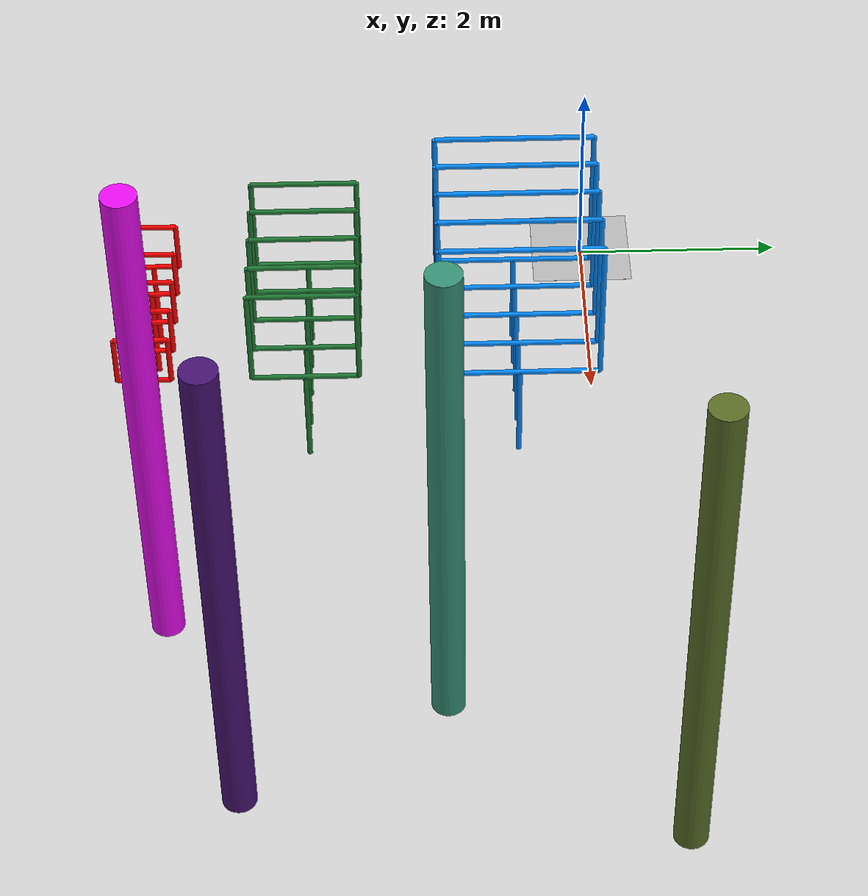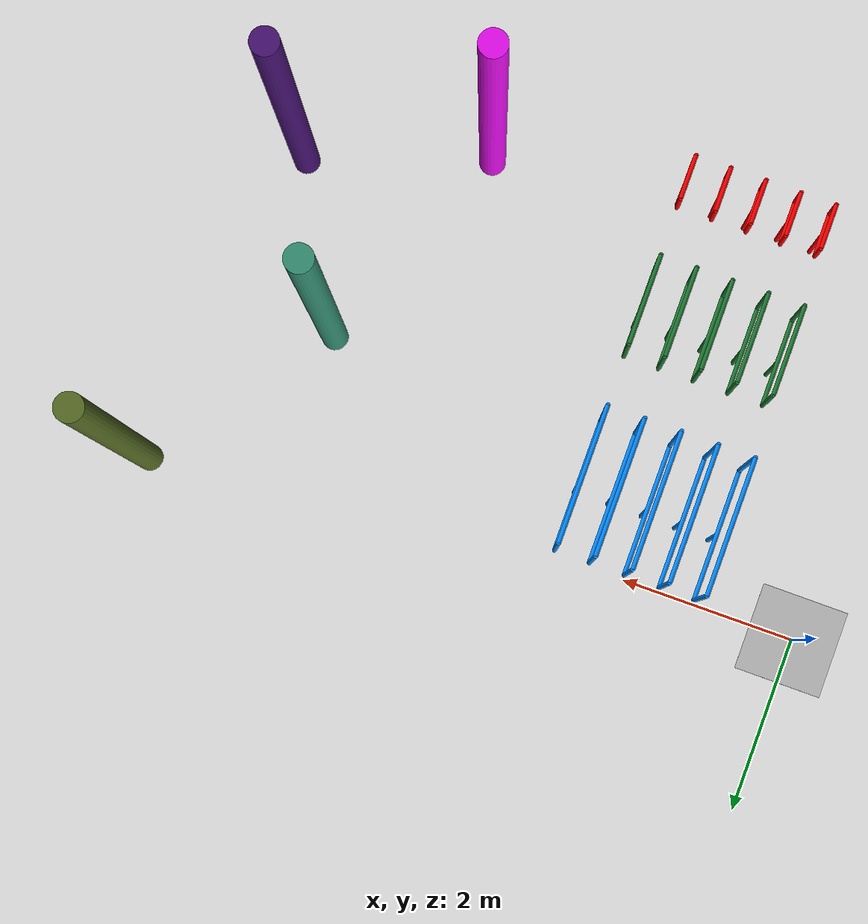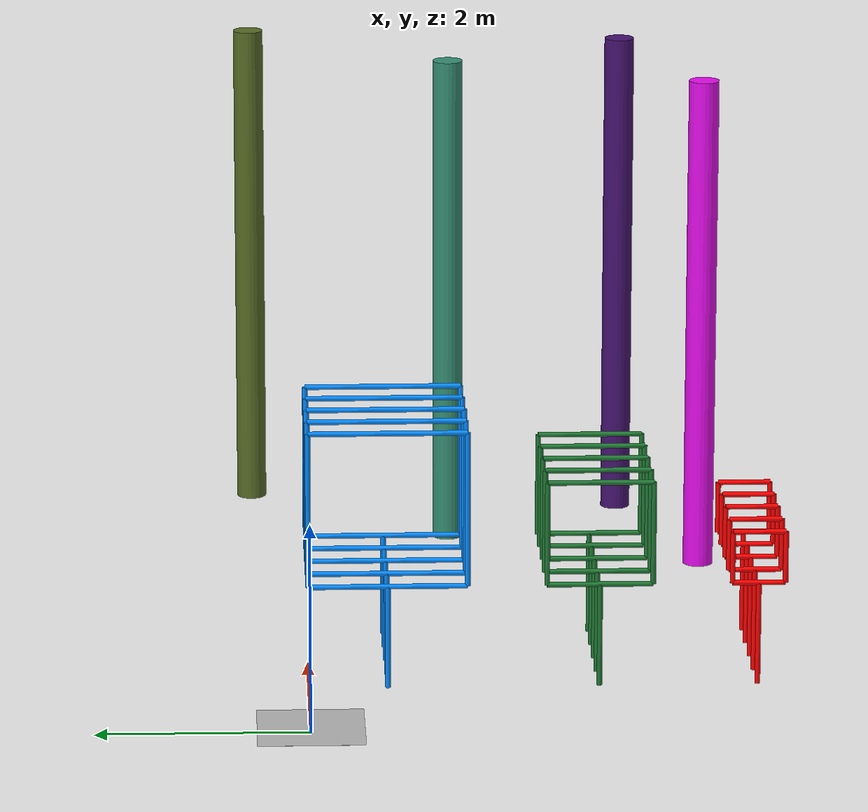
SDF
<sdf version="1.9">
 <world name="indoor">
  <physics type="ode">
   <max_step_size>0.004</max_step_size>
   <real_time_factor>1.0</real_time_factor>
   <real_time_update_rate>250</real_time_update_rate>
  </physics>
  <plugin name="gz::sim::systems::Physics" filename="gz-sim-physics-system"/>
  <plugin name="gz::sim::systems::UserCommands" filename="gz-sim-user-commands-system"/>
  <plugin name="gz::sim::systems::SceneBroadcaster" filename="gz-sim-scene-broadcaster-system"/>
  <plugin name="gz::sim::systems::Contact" filename="gz-sim-contact-system"/>
  <plugin name="gz::sim::systems::Imu" filename="gz-sim-imu-system"/>
  <plugin name="gz::sim::systems::AirPressure" filename="gz-sim-air-pressure-system"/>
  <plugin name="gz::sim::systems::Sensors" filename="gz-sim-sensors-system">
   <render_engine>ogre2</render_engine>
  </plugin>
  <gravity>0 0 -9.8</gravity>
  <magnetic_field>6e-06 2.3e-05 -4.2e-05</magnetic_field>
  <atmosphere type="adiabatic"/>
  <scene>
   <grid>false</grid>
   <ambient>0.4 0.4 0.4 1</ambient>
   <background>0.7 0.7 0.7 1</background>
   <shadows>true</shadows>
  </scene>
  <light name="sunUTC" type="directional">
   <pose>0 0 500 0 0 0</pose>
   <intensity>1</intensity>
   <direction>0 0 -1</direction>
   <diffuse>0.904 0.904 0.904 1</diffuse>
   <specular>0.271 0.271 0.271 1</specular>
   <attenuation><range>2000</range><linear>0</linear><constant>1</constant><quadratic>0</quadratic></attenuation>
  </light>
  <light name="directional_light1" type="directional">
   <pose>500 0 500 0 0 0</pose>
   <direction>-1 0 -1</direction>
   <intensity>0.5</intensity>
   <diffuse>0.8 0.8 0.8 1</diffuse>
   <specular>0.5 0.5 0.5 1</specular>
  </light>
  <light name="directional_light2" type="directional">
   <pose>0 500 500 0 0 0</pose>
   <direction>0 -1 -1</direction>
   <intensity>0.5</intensity>
   <diffuse>0.8 0.8 0.8 1</diffuse>
   <specular>0.5 0.5 0.5 1</specular>
  </light>
  <light name="directional_light3" type="directional">
   <pose>-500 0 500 0 0 0</pose>
   <direction>-1 0 -1</direction>
   <intensity>0.5</intensity>
   <diffuse>0.8 0.8 0.8 1</diffuse>
   <specular>0.5 0.5 0.5 1</specular>
  </light>
  <light name="directional_light4" type="directional">
   <pose>0 -500 500 0 0 0</pose>
   <direction>0 -1 -1</direction>
   <intensity>0.5</intensity>
   <diffuse>0.8 0.8 0.8 1</diffuse>
   <specular>0.5 0.5 0.5 1</specular>
  </light>
  <light name="directional_light5" type="directional">
   <pose>500 0 500 0 0 0</pose>
   <direction>1 0 1</direction>
   <intensity>0.5</intensity>
   <diffuse>0.8 0.8 0.8 1</diffuse>
   <specular>0.5 0.5 0.5 1</specular>
  </light>
  <light name="directional_light6" type="directional">
   <pose>0 500 500 0 0 0</pose>
   <direction>0 1 1</direction>
   <intensity>0.5</intensity>
   <diffuse>0.8 0.8 0.8 1</diffuse>
   <specular>0.5 0.5 0.5 1</specular>
  </light>
  <light name="directional_light7" type="directional">
   <pose>-500 0 500 0 0 0</pose>
   <direction>1 0 1</direction>
   <intensity>0.5</intensity>
   <diffuse>0.8 0.8 0.8 1</diffuse>
   <specular>0.5 0.5 0.5 1</specular>
  </light>
  <light name="directional_light8" type="directional">
   <pose>0 -500 500 0 0 0</pose>
   <direction>0 1 1</direction>
   <intensity>0.5</intensity>
   <diffuse>0.8 0.8 0.8 1</diffuse>
   <specular>0.5 0.5 0.5 1</specular>
  </light>
  <model name="obstacle_1">
   <static>true</static>
   <pose>7.5 0.5 2.5 0 0 0</pose>
   <link name="obstacle_link">
    <visual name="obstacle_visual">
     <geometry><cylinder><radius>0.15</radius><length>5</length></cylinder></geometry>
     <material><diffuse>0.35 0.43 0.15 1</diffuse></material>
    </visual>
   </link>
  </model>
  <model name="obstacle_2">
   <static>true</static>
   <pose>6 -1.5 2.5 0 0 0</pose>
   <link name="obstacle_link">
    <visual name="obstacle_visual">
     <geometry><cylinder><radius>0.15</radius><length>5</length></cylinder></geometry>
     <material><diffuse>0.21 0.57 0.46 1</diffuse></material>
    </visual>
   </link>
  </model>
  <model name="obstacle_3">
   <static>true</static>
   <pose>7 -3.3 2.5 0 0 0</pose>
   <link name="obstacle_link">
    <visual name="obstacle_visual">
     <geometry><cylinder><radius>0.15</radius><length>5</length></cylinder></geometry>
     <material><diffuse>0.28 0.07 0.45 1</diffuse></material>
    </visual>
   </link>
  </model>
  <model name="obstacle_4">
   <static>true</static>
   <pose>5 -4 2.5 0 0 0</pose>
   <link name="obstacle_link">
    <visual name="obstacle_visual">
     <geometry><cylinder><radius>0.15</radius><length>5</length></cylinder></geometry>
     <material><diffuse>0.92 0.05 0.95 1</diffuse></material>
    </visual>
   </link>
  </model>
  <model name="TakeOff Platform">
   <static>true</static>
   <pose>0 0 0.05 1.57079 0 1.57079</pose>
   <link name="base_TO_platform">
    <visual name="visual">
     <geometry><plane><normal>0 1 0</normal><size>1 1</size></plane></geometry>
     <material>
      <pbr><metal><emissive_map>model://images/Landing_Platform.png</emissive_map></metal></pbr>
     </material>
    </visual>
   </link>
  </model>
  <model name="tunel1_ventana1">
   <static>true</static>
   <link name="base">
    <pose>1.25 -0.75 0.5 0 0 0</pose>
    <visual name="vertical_support">
     <geometry><cylinder><radius>0.025</radius><length>1.0</length></cylinder></geometry>
     <material><diffuse>0.02 0.55 1 1</diffuse></material>
    </visual>
   </link>
   <link name="leftbar">
    <pose relative_to="base">0 0.75 1.25 0 0 0</pose>
    <visual name="left_bar">
     <geometry><cylinder><radius>0.025</radius><length>1.5</length></cylinder></geometry>
     <material><diffuse>0.02 0.55 1 1</diffuse></material>
    </visual>
   </link>
   <link name="rightbar">
    <pose relative_to="base">0 -0.75 1.25 0 0 0</pose>
    <visual name="right_bar">
     <geometry><cylinder><radius>0.025</radius><length>1.5</length></cylinder></geometry>
     <material><diffuse>0.02 0.55 1 1</diffuse></material>
    </visual>
   </link>
   <link name="topbar">
    <pose relative_to="base">0 0 2.0 1.57079 0 0</pose>
    <visual name="top_bar">
     <geometry><cylinder><radius>0.025</radius><length>1.5</length></cylinder></geometry>
     <material><diffuse>0.02 0.55 1 1</diffuse></material>
    </visual>
   </link>
   <link name="bottombar">
    <pose relative_to="base">0 0 0.5 1.57079 0 0</pose>
    <visual name="bottom_bar">
     <geometry><cylinder><radius>0.025</radius><length>1.5</length></cylinder></geometry>
     <material><diffuse>0.02 0.55 1 1</diffuse></material>
    </visual>
   </link>
  </model>
  <model name="tunel1_ventana2">
   <static>true</static>
   <link name="base">
    <pose>1.65 -0.75 0.5 0 0 0</pose>
    <visual name="vertical_support">
     <geometry><cylinder><radius>0.025</radius><length>1.0</length></cylinder></geometry>
     <material><diffuse>0.02 0.55 1 1</diffuse></material>
    </visual>
   </link>
   <link name="leftbar">
    <pose relative_to="base">0 0.75 1.25 0 0 0</pose>
    <visual name="left_bar">
     <geometry><cylinder><radius>0.025</radius><length>1.5</length></cylinder></geometry>
     <material><diffuse>0.02 0.55 1 1</diffuse></material>
    </visual>
   </link>
   <link name="rightbar">
    <pose relative_to="base">0 -0.75 1.25 0 0 0</pose>
    <visual name="right_bar">
     <geometry><cylinder><radius>0.025</radius><length>1.5</length></cylinder></geometry>
     <material><diffuse>0.02 0.55 1 1</diffuse></material>
    </visual>
   </link>
   <link name="topbar">
    <pose relative_to="base">0 0 2.0 1.57079 0 0</pose>
    <visual name="top_bar">
     <geometry><cylinder><radius>0.025</radius><length>1.5</length></cylinder></geometry>
     <material><diffuse>0.02 0.55 1 1</diffuse></material>
    </visual>
   </link>
   <link name="bottombar">
    <pose relative_to="base">0 0 0.5 1.57079 0 0</pose>
    <visual name="bottom_bar">
     <geometry><cylinder><radius>0.025</radius><length>1.5</length></cylinder></geometry>
     <material><diffuse>0.02 0.55 1 1</diffuse></material>
    </visual>
   </link>
  </model>
  <model name="tunel1_ventana3">
   <static>true</static>
   <link name="base">
    <pose>2.05 -0.75 0.5 0 0 0</pose>
    <visual name="vertical_support">
     <geometry><cylinder><radius>0.025</radius><length>1.0</length></cylinder></geometry>
     <material><diffuse>0.02 0.55 1 1</diffuse></material>
    </visual>
   </link>
   <link name="leftbar">
    <pose relative_to="base">0 0.75 1.25 0 0 0</pose>
    <visual name="left_bar">
     <geometry><cylinder><radius>0.025</radius><length>1.5</length></cylinder></geometry>
     <material><diffuse>0.02 0.55 1 1</diffuse></material>
    </visual>
   </link>
   <link name="rightbar">
    <pose relative_to="base">0 -0.75 1.25 0 0 0</pose>
    <visual name="right_bar">
     <geometry><cylinder><radius>0.025</radius><length>1.5</length></cylinder></geometry>
     <material><diffuse>0.02 0.55 1 1</diffuse></material>
    </visual>
   </link>
   <link name="topbar">
    <pose relative_to="base">0 0 2.0 1.57079 0 0</pose>
    <visual name="top_bar">
     <geometry><cylinder><radius>0.025</radius><length>1.5</length></cylinder></geometry>
     <material><diffuse>0.02 0.55 1 1</diffuse></material>
    </visual>
   </link>
   <link name="bottombar">
    <pose relative_to="base">0 0 0.5 1.57079 0 0</pose>
    <visual name="bottom_bar">
     <geometry><cylinder><radius>0.025</radius><length>1.5</length></cylinder></geometry>
     <material><diffuse>0.02 0.55 1 1</diffuse></material>
    </visual>
   </link>
  </model>
  <model name="tunel1_ventana4">
   <static>true</static>
   <link name="base">
    <pose>2.45 -0.75 0.5 0 0 0</pose>
    <visual name="vertical_support">
     <geometry><cylinder><radius>0.025</radius><length>1.0</length></cylinder></geometry>
     <material><diffuse>0.02 0.55 1 1</diffuse></material>
    </visual>
   </link>
   <link name="leftbar">
    <pose relative_to="base">0 0.75 1.25 0 0 0</pose>
    <visual name="left_bar">
     <geometry><cylinder><radius>0.025</radius><length>1.5</length></cylinder></geometry>
     <material><diffuse>0.02 0.55 1 1</diffuse></material>
    </visual>
   </link>
   <link name="rightbar">
    <pose relative_to="base">0 -0.75 1.25 0 0 0</pose>
    <visual name="right_bar">
     <geometry><cylinder><radius>0.025</radius><length>1.5</length></cylinder></geometry>
     <material><diffuse>0.02 0.55 1 1</diffuse></material>
    </visual>
   </link>
   <link name="topbar">
    <pose relative_to="base">0 0 2.0 1.57079 0 0</pose>
    <visual name="top_bar">
     <geometry><cylinder><radius>0.025</radius><length>1.5</length></cylinder></geometry>
     <material><diffuse>0.02 0.55 1 1</diffuse></material>
    </visual>
   </link>
   <link name="bottombar">
    <pose relative_to="base">0 0 0.5 1.57079 0 0</pose>
    <visual name="bottom_bar">
     <geometry><cylinder><radius>0.025</radius><length>1.5</length></cylinder></geometry>
     <material><diffuse>0.02 0.55 1 1</diffuse></material>
    </visual>
   </link>
  </model>
  <model name="tunel1_ventana5">
   <static>true</static>
   <link name="base">
    <pose>2.85 -0.75 0.5 0 0 0</pose>
    <visual name="vertical_support">
     <geometry><cylinder><radius>0.025</radius><length>1.0</length></cylinder></geometry>
     <material><diffuse>0.02 0.55 1 1</diffuse></material>
    </visual>
   </link>
   <link name="leftbar">
    <pose relative_to="base">0 0.75 1.25 0 0 0</pose>
    <visual name="left_bar">
     <geometry><cylinder><radius>0.025</radius><length>1.5</length></cylinder></geometry>
     <material><diffuse>0.02 0.55 1 1</diffuse></material>
    </visual>
   </link>
   <link name="rightbar">
    <pose relative_to="base">0 -0.75 1.25 0 0 0</pose>
    <visual name="right_bar">
     <geometry><cylinder><radius>0.025</radius><length>1.5</length></cylinder></geometry>
     <material><diffuse>0.02 0.55 1 1</diffuse></material>
    </visual>
   </link>
   <link name="topbar">
    <pose relative_to="base">0 0 2.0 1.57079 0 0</pose>
    <visual name="top_bar">
     <geometry><cylinder><radius>0.025</radius><length>1.5</length></cylinder></geometry>
     <material><diffuse>0.02 0.55 1 1</diffuse></material>
    </visual>
   </link>
   <link name="bottombar">
    <pose relative_to="base">0 0 0.5 1.57079 0 0</pose>
    <visual name="bottom_bar">
     <geometry><cylinder><radius>0.025</radius><length>1.5</length></cylinder></geometry>
     <material><diffuse>0.02 0.55 1 1</diffuse></material>
    </visual>
   </link>
  </model>
  <model name="tunel2_ventana1">
   <static>true</static>
   <link name="base">
    <pose>1.25 -2.75 0.5 0 0 0</pose>
    <visual name="vertical_support">
     <geometry><cylinder><radius>0.025</radius><length>1.0</length></cylinder></geometry>
     <material><diffuse>0.124 0.478 0.204 1</diffuse></material>
    </visual>
   </link>
   <link name="leftbar">
    <pose relative_to="base">0 0.5 1.0 0 0 0</pose>
    <visual name="left_bar">
     <geometry><cylinder><radius>0.025</radius><length>1.0</length></cylinder></geometry>
     <material><diffuse>0.124 0.478 0.204 1</diffuse></material>
    </visual>
   </link>
   <link name="rightbar">
    <pose relative_to="base">0 -0.5 1.0 0 0 0</pose>
    <visual name="right_bar">
     <geometry><cylinder><radius>0.025</radius><length>1.0</length></cylinder></geometry>
     <material><diffuse>0.124 0.478 0.204 1</diffuse></material>
    </visual>
   </link>
   <link name="topbar">
    <pose relative_to="base">0 0 1.5 1.57079 0 0</pose>
    <visual name="top_bar">
     <geometry><cylinder><radius>0.025</radius><length>1.0</length></cylinder></geometry>
     <material><diffuse>0.124 0.478 0.204 1</diffuse></material>
    </visual>
   </link>
   <link name="bottombar">
    <pose relative_to="base">0 0 0.5 1.57079 0 0</pose>
    <visual name="bottom_bar">
     <geometry><cylinder><radius>0.025</radius><length>1.0</length></cylinder></geometry>
     <material><diffuse>0.124 0.478 0.204 1</diffuse></material>
    </visual>
   </link>
  </model>
  <model name="tunel2_ventana2">
   <static>true</static>
   <link name="base">
    <pose>1.65 -2.75 0.5 0 0 0</pose>
    <visual name="vertical_support">
     <geometry><cylinder><radius>0.025</radius><length>1.0</length></cylinder></geometry>
     <material><diffuse>0.124 0.478 0.204 1</diffuse></material>
    </visual>
   </link>
   <link name="leftbar">
    <pose relative_to="base">0 0.5 1.0 0 0 0</pose>
    <visual name="left_bar">
     <geometry><cylinder><radius>0.025</radius><length>1.0</length></cylinder></geometry>
     <material><diffuse>0.124 0.478 0.204 1</diffuse></material>
    </visual>
   </link>
   <link name="rightbar">
    <pose relative_to="base">0 -0.5 1.0 0 0 0</pose>
    <visual name="right_bar">
     <geometry><cylinder><radius>0.025</radius><length>1.0</length></cylinder></geometry>
     <material><diffuse>0.124 0.478 0.204 1</diffuse></material>
    </visual>
   </link>
   <link name="topbar">
    <pose relative_to="base">0 0 1.5 1.57079 0 0</pose>
    <visual name="top_bar">
     <geometry><cylinder><radius>0.025</radius><length>1.0</length></cylinder></geometry>
     <material><diffuse>0.124 0.478 0.204 1</diffuse></material>
    </visual>
   </link>
   <link name="bottombar">
    <pose relative_to="base">0 0 0.5 1.57079 0 0</pose>
    <visual name="bottom_bar">
     <geometry><cylinder><radius>0.025</radius><length>1.0</length></cylinder></geometry>
     <material><diffuse>0.124 0.478 0.204 1</diffuse></material>
    </visual>
   </link>
  </model>
  <model name="tunel2_ventana3">
   <static>true</static>
   <link name="base">
    <pose>2.05 -2.75 0.5 0 0 0</pose>
    <visual name="vertical_support">
     <geometry><cylinder><radius>0.025</radius><length>1.0</length></cylinder></geometry>
     <material><diffuse>0.124 0.478 0.204 1</diffuse></material>
    </visual>
   </link>
   <link name="leftbar">
    <pose relative_to="base">0 0.5 1.0 0 0 0</pose>
    <visual name="left_bar">
     <geometry><cylinder><radius>0.025</radius><length>1.0</length></cylinder></geometry>
     <material><diffuse>0.124 0.478 0.204 1</diffuse></material>
    </visual>
   </link>
   <link name="rightbar">
    <pose relative_to="base">0 -0.5 1.0 0 0 0</pose>
    <visual name="right_bar">
     <geometry><cylinder><radius>0.025</radius><length>1.0</length></cylinder></geometry>
     <material><diffuse>0.124 0.478 0.204 1</diffuse></material>
    </visual>
   </link>
   <link name="topbar">
    <pose relative_to="base">0 0 1.5 1.57079 0 0</pose>
    <visual name="top_bar">
     <geometry><cylinder><radius>0.025</radius><length>1.0</length></cylinder></geometry>
     <material><diffuse>0.124 0.478 0.204 1</diffuse></material>
    </visual>
   </link>
   <link name="bottombar">
    <pose relative_to="base">0 0 0.5 1.57079 0 0</pose>
    <visual name="bottom_bar">
     <geometry><cylinder><radius>0.025</radius><length>1.0</length></cylinder></geometry>
     <material><diffuse>0.124 0.478 0.204 1</diffuse></material>
    </visual>
   </link>
  </model>
  <model name="tunel2_ventana4">
   <static>true</static>
   <link name="base">
    <pose>2.45 -2.75 0.5 0 0 0</pose>
    <visual name="vertical_support">
     <geometry><cylinder><radius>0.025</radius><length>1.0</length></cylinder></geometry>
     <material><diffuse>0.124 0.478 0.204 1</diffuse></material>
    </visual>
   </link>
   <link name="leftbar">
    <pose relative_to="base">0 0.5 1.0 0 0 0</pose>
    <visual name="left_bar">
     <geometry><cylinder><radius>0.025</radius><length>1.0</length></cylinder></geometry>
     <material><diffuse>0.124 0.478 0.204 1</diffuse></material>
    </visual>
   </link>
   <link name="rightbar">
    <pose relative_to="base">0 -0.5 1.0 0 0 0</pose>
    <visual name="right_bar">
     <geometry><cylinder><radius>0.025</radius><length>1.0</length></cylinder></geometry>
     <material><diffuse>0.124 0.478 0.204 1</diffuse></material>
    </visual>
   </link>
   <link name="topbar">
    <pose relative_to="base">0 0 1.5 1.57079 0 0</pose>
    <visual name="top_bar">
     <geometry><cylinder><radius>0.025</radius><length>1.0</length></cylinder></geometry>
     <material><diffuse>0.124 0.478 0.204 1</diffuse></material>
    </visual>
   </link>
   <link name="bottombar">
    <pose relative_to="base">0 0 0.5 1.57079 0 0</pose>
    <visual name="bottom_bar">
     <geometry><cylinder><radius>0.025</radius><length>1.0</length></cylinder></geometry>
     <material><diffuse>0.124 0.478 0.204 1</diffuse></material>
    </visual>
   </link>
  </model>
  <model name="tunel2_ventana5">
   <static>true</static>
   <link name="base">
    <pose>2.85 -2.75 0.5 0 0 0</pose>
    <visual name="vertical_support">
     <geometry><cylinder><radius>0.025</radius><length>1.0</length></cylinder></geometry>
     <material><diffuse>0.124 0.478 0.204 1</diffuse></material>
    </visual>
   </link>
   <link name="leftbar">
    <pose relative_to="base">0 0.5 1.0 0 0 0</pose>
    <visual name="left_bar">
     <geometry><cylinder><radius>0.025</radius><length>1.0</length></cylinder></geometry>
     <material><diffuse>0.124 0.478 0.204 1</diffuse></material>
    </visual>
   </link>
   <link name="rightbar">
    <pose relative_to="base">0 -0.5 1.0 0 0 0</pose>
    <visual name="right_bar">
     <geometry><cylinder><radius>0.025</radius><length>1.0</length></cylinder></geometry>
     <material><diffuse>0.124 0.478 0.204 1</diffuse></material>
    </visual>
   </link>
   <link name="topbar">
    <pose relative_to="base">0 0 1.5 1.57079 0 0</pose>
    <visual name="top_bar">
     <geometry><cylinder><radius>0.025</radius><length>1.0</length></cylinder></geometry>
     <material><diffuse>0.124 0.478 0.204 1</diffuse></material>
    </visual>
   </link>
   <link name="bottombar">
    <pose relative_to="base">0 0 0.5 1.57079 0 0</pose>
    <visual name="bottom_bar">
     <geometry><cylinder><radius>0.025</radius><length>1.0</length></cylinder></geometry>
     <material><diffuse>0.124 0.478 0.204 1</diffuse></material>
    </visual>
   </link>
  </model>
  <model name="tunel3_ventana1">
   <static>true</static>
   <link name="base">
    <pose>1.25 -4.25 0.5 0 0 0</pose>
    <visual name="vertical_support">
     <geometry><cylinder><radius>0.025</radius><length>1.0</length></cylinder></geometry>
     <material><diffuse>1.0 0 0 1</diffuse></material>
    </visual>
   </link>
   <link name="leftbar">
    <pose relative_to="base">0 0.25 0.75 0 0 0</pose>
    <visual name="left_bar">
     <geometry><cylinder><radius>0.025</radius><length>0.5</length></cylinder></geometry>
     <material><diffuse>1.0 0 0 1</diffuse></material>
    </visual>
   </link>
   <link name="rightbar">
    <pose relative_to="base">0 -0.25 0.75 0 0 0</pose>
    <visual name="right_bar">
     <geometry><cylinder><radius>0.025</radius><length>0.5</length></cylinder></geometry>
     <material><diffuse>1.0 0 0 1</diffuse></material>
    </visual>
   </link>
   <link name="topbar">
    <pose relative_to="base">0 0 1.0 1.57079 0 0</pose>
    <visual name="top_bar">
     <geometry><cylinder><radius>0.025</radius><length>0.5</length></cylinder></geometry>
     <material><diffuse>1.0 0 0 1</diffuse></material>
    </visual>
   </link>
   <link name="bottombar">
    <pose relative_to="base">0 0 0.5 1.57079 0 0</pose>
    <visual name="bottom_bar">
     <geometry><cylinder><radius>0.025</radius><length>0.5</length></cylinder></geometry>
     <material><diffuse>1.0 0 0 1</diffuse></material>
    </visual>
   </link>
  </model>
  <model name="tunel3_ventana2">
   <static>true</static>
   <link name="base">
    <pose>1.65 -4.25 0.5 0 0 0</pose>
    <visual name="vertical_support">
     <geometry><cylinder><radius>0.025</radius><length>1.0</length></cylinder></geometry>
     <material><diffuse>1.0 0 0 1</diffuse></material>
    </visual>
   </link>
   <link name="leftbar">
    <pose relative_to="base">0 0.25 0.75 0 0 0</pose>
    <visual name="left_bar">
     <geometry><cylinder><radius>0.025</radius><length>0.5</length></cylinder></geometry>
     <material><diffuse>1.0 0 0 1</diffuse></material>
    </visual>
   </link>
   <link name="rightbar">
    <pose relative_to="base">0 -0.25 0.75 0 0 0</pose>
    <visual name="right_bar">
     <geometry><cylinder><radius>0.025</radius><length>0.5</length></cylinder></geometry>
     <material><diffuse>1.0 0 0 1</diffuse></material>
    </visual>
   </link>
   <link name="topbar">
    <pose relative_to="base">0 0 1.0 1.57079 0 0</pose>
    <visual name="top_bar">
     <geometry><cylinder><radius>0.025</radius><length>0.5</length></cylinder></geometry>
     <material><diffuse>1.0 0 0 1</diffuse></material>
    </visual>
   </link>
   <link name="bottombar">
    <pose relative_to="base">0 0 0.5 1.57079 0 0</pose>
    <visual name="bottom_bar">
     <geometry><cylinder><radius>0.025</radius><length>0.5</length></cylinder></geometry>
     <material><diffuse>1.0 0 0 1</diffuse></material>
    </visual>
   </link>
  </model>
  <model name="tunel3_ventana3">
   <static>true</static>
   <link name="base">
    <pose>2.05 -4.25 0.5 0 0 0</pose>
    <visual name="vertical_support">
     <geometry><cylinder><radius>0.025</radius><length>1.0</length></cylinder></geometry>
     <material><diffuse>1.0 0 0 1</diffuse></material>
    </visual>
   </link>
   <link name="leftbar">
    <pose relative_to="base">0 0.25 0.75 0 0 0</pose>
    <visual name="left_bar">
     <geometry><cylinder><radius>0.025</radius><length>0.5</length></cylinder></geometry>
     <material><diffuse>1.0 0 0 1</diffuse></material>
    </visual>
   </link>
   <link name="rightbar">
    <pose relative_to="base">0 -0.25 0.75 0 0 0</pose>
    <visual name="right_bar">
     <geometry><cylinder><radius>0.025</radius><length>0.5</length></cylinder></geometry>
     <material><diffuse>1.0 0 0 1</diffuse></material>
    </visual>
   </link>
   <link name="topbar">
    <pose relative_to="base">0 0 1.0 1.57079 0 0</pose>
    <visual name="top_bar">
     <geometry><cylinder><radius>0.025</radius><length>0.5</length></cylinder></geometry>
     <material><diffuse>1.0 0 0 1</diffuse></material>
    </visual>
   </link>
   <link name="bottombar">
    <pose relative_to="base">0 0 0.5 1.57079 0 0</pose>
    <visual name="bottom_bar">
     <geometry><cylinder><radius>0.025</radius><length>0.5</length></cylinder></geometry>
     <material><diffuse>1.0 0 0 1</diffuse></material>
    </visual>
   </link>
  </model>
  <model name="tunel3_ventana4">
   <static>true</static>
   <link name="base">
    <pose>2.45 -4.25 0.5 0 0 0</pose>
    <visual name="vertical_support">
     <geometry><cylinder><radius>0.025</radius><length>1.0</length></cylinder></geometry>
     <material><diffuse>1.0 0 0 1</diffuse></material>
    </visual>
   </link>
   <link name="leftbar">
    <pose relative_to="base">0 0.25 0.75 0 0 0</pose>
    <visual name="left_bar">
     <geometry><cylinder><radius>0.025</radius><length>0.5</length></cylinder></geometry>
     <material><diffuse>1.0 0 0 1</diffuse></material>
    </visual>
   </link>
   <link name="rightbar">
    <pose relative_to="base">0 -0.25 0.75 0 0 0</pose>
    <visual name="right_bar">
     <geometry><cylinder><radius>0.025</radius><length>0.5</length></cylinder></geometry>
     <material><diffuse>1.0 0 0 1</diffuse></material>
    </visual>
   </link>
   <link name="topbar">
    <pose relative_to="base">0 0 1.0 1.57079 0 0</pose>
    <visual name="top_bar">
     <geometry><cylinder><radius>0.025</radius><length>0.5</length></cylinder></geometry>
     <material><diffuse>1.0 0 0 1</diffuse></material>
    </visual>
   </link>
   <link name="bottombar">
    <pose relative_to="base">0 0 0.5 1.57079 0 0</pose>
    <visual name="bottom_bar">
     <geometry><cylinder><radius>0.025</radius><length>0.5</length></cylinder></geometry>
     <material><diffuse>1.0 0 0 1</diffuse></material>
    </visual>
   </link>
  </model>
  <model name="tunel3_ventana5">
   <static>true</static>
   <link name="base">
    <pose>2.85 -4.25 0.5 0 0 0</pose>
    <visual name="vertical_support">
     <geometry><cylinder><radius>0.025</radius><length>1.0</length></cylinder></geometry>
     <material><diffuse>1.0 0 0 1</diffuse></material>
    </visual>
   </link>
   <link name="leftbar">
    <pose relative_to="base">0 0.25 0.75 0 0 0</pose>
    <visual name="left_bar">
     <geometry><cylinder><radius>0.025</radius><length>0.5</length></cylinder></geometry>
     <material><diffuse>1.0 0 0 1</diffuse></material>
    </visual>
   </link>
   <link name="rightbar">
    <pose relative_to="base">0 -0.25 0.75 0 0 0</pose>
    <visual name="right_bar">
     <geometry><cylinder><radius>0.025</radius><length>0.5</length></cylinder></geometry>
     <material><diffuse>1.0 0 0 1</diffuse></material>
    </visual>
   </link>
   <link name="topbar">
    <pose relative_to="base">0 0 1.0 1.57079 0 0</pose>
    <visual name="top_bar">
     <geometry><cylinder><radius>0.025</radius><length>0.5</length></cylinder></geometry>
     <material><diffuse>1.0 0 0 1</diffuse></material>
    </visual>
   </link>
   <link name="bottombar">
    <pose relative_to="base">0 0 0.5 1.57079 0 0</pose>
    <visual name="bottom_bar">
     <geometry><cylinder><radius>0.025</radius><length>0.5</length></cylinder></geometry>
     <material><diffuse>1.0 0 0 1</diffuse></material>
    </visual>
   </link>
  </model>
 </world>
</sdf>
